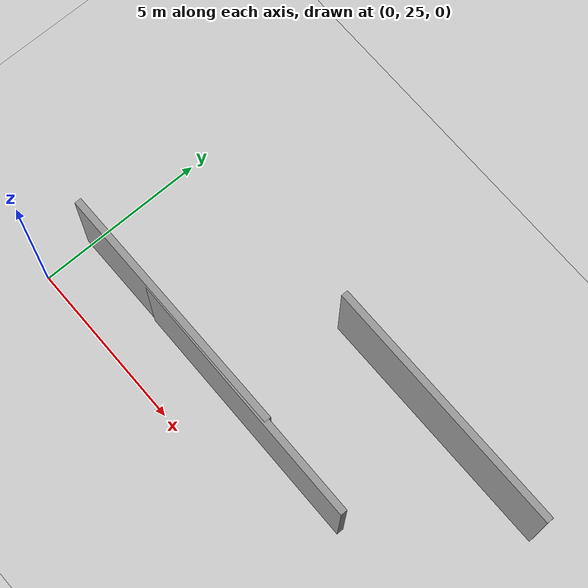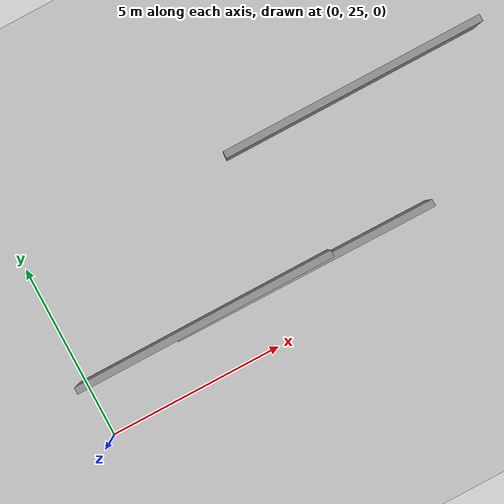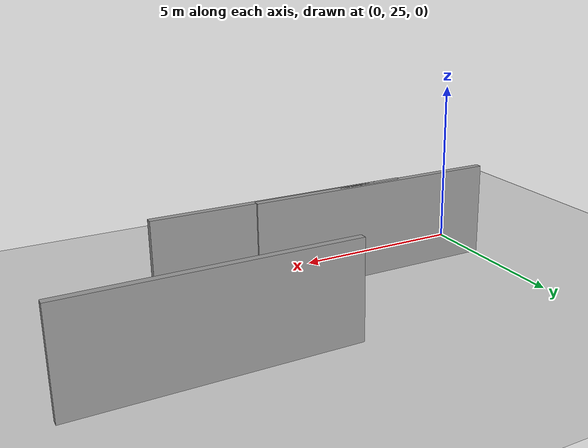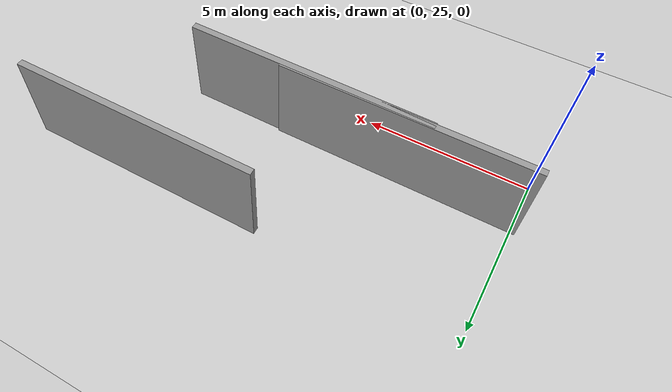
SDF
<sdf version="1.7">
 <world name="default">
  <model name="ground_plane">
   <static>1</static>
   <link name="link">
    <collision name="collision">
     <geometry><plane><normal>0 0 1</normal><size>100 100</size></plane></geometry>
     <surface><friction><ode><mu>100</mu><mu2>50</mu2></ode></friction></surface>
    </collision>
    <visual name="visual">
     <cast_shadows>0</cast_shadows>
     <geometry><plane><normal>0 0 1</normal><size>100 100</size></plane></geometry>
     <material>
      <script><uri>file://media/materials/scripts/gazebo.material</uri><name>Gazebo/Grey</name></script>
     </material>
    </visual>
   </link>
  </model>
  <model name="grey_wall_clone">
   <static>1</static>
   <link name="link">
    <pose>0 0 1.4 0 -0 0</pose>
    <collision name="collision"><geometry><box><size>7.5 0.2 2.8</size></box></geometry></collision>
    <visual name="visual">
     <cast_shadows>0</cast_shadows>
     <geometry><box><size>7.5 0.2 2.8</size></box></geometry>
     <material>
      <script>
       <uri>model://grey_wall/materials/scripts</uri>
       <uri>model://grey_wall/materials/textures</uri>
       <name>vrc/grey_wall</name>
      </script>
     </material>
    </visual>
   </link>
   <pose>9.86633 30.131 0 0 -0 0</pose>
  </model>
  <model name="grey_wall_clone_clone">
   <static>1</static>
   <link name="link">
    <pose>0 0 1.4 0 -0 0</pose>
    <collision name="collision"><geometry><box><size>7.5 0.2 2.8</size></box></geometry></collision>
    <visual name="visual">
     <cast_shadows>0</cast_shadows>
     <geometry><box><size>7.5 0.2 2.8</size></box></geometry>
     <material>
      <script>
       <uri>model://grey_wall/materials/scripts</uri>
       <uri>model://grey_wall/materials/textures</uri>
       <name>vrc/grey_wall</name>
      </script>
     </material>
    </visual>
   </link>
   <pose>3.61509 26.5822 0 0 -0 0</pose>
  </model>
  <model name="grey_wall_2_clone_4_clone_2_clone_6">
   <static>1</static>
   <link name="link">
    <pose>0 0 1.4 0 -0 0</pose>
    <collision name="collision"><geometry><box><size>7.5 0.2 2.8</size></box></geometry></collision>
    <visual name="visual">
     <cast_shadows>0</cast_shadows>
     <geometry><box><size>7.5 0.2 2.8</size></box></geometry>
     <material>
      <script>
       <uri>model://grey_wall/materials/scripts</uri>
       <uri>model://grey_wall/materials/textures</uri>
       <name>vrc/grey_wall</name>
      </script>
     </material>
    </visual>
   </link>
   <pose>6.53829 26.5239 0 0 -0 3.13553</pose>
  </model>
 </world>
</sdf>
